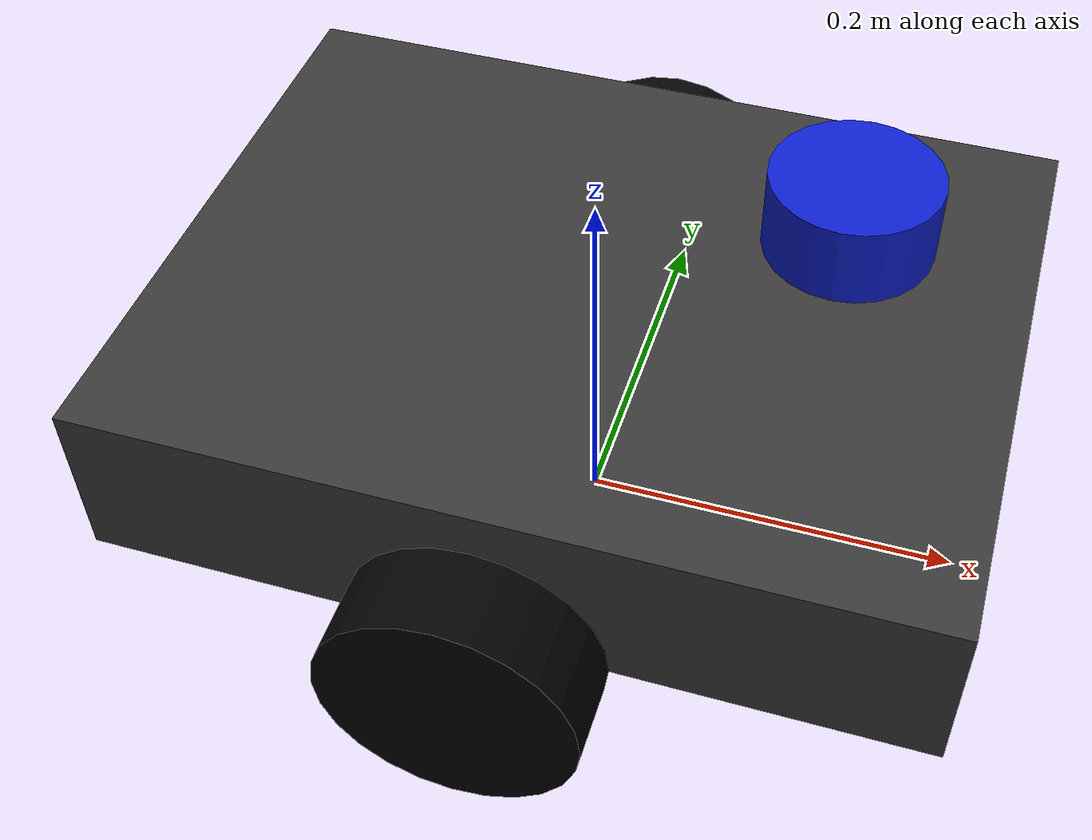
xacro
<?xml version="1.0"?>
<robot xmlns:xacro="http://www.ros.org/wiki/xacro" name="m10p_test_robot">
  <xacro:arg name="use_sim_time" default="true"/>

  <xacro:property name="PI_CONST" value="3.141592653589793"/>

  <!-- chassis -->
  <xacro:property name="base_length" value="0.42"/>
  <xacro:property name="base_width" value="0.32"/>
  <xacro:property name="base_height" value="0.09"/>
  <!-- base_link is on ground, so the chassis visual center is above ground. -->
  <xacro:property name="base_center_z" value="0.110"/>

  <!-- wheels -->
  <xacro:property name="wheel_radius" value="0.065"/>
  <xacro:property name="wheel_width" value="0.045"/>
  <!-- Keep wheels close to the chassis side: base_width/2 + wheel_width/2 ~= 0.1825 -->
  <xacro:property name="wheel_separation" value="0.365"/>
  <!-- Move the wheel axle slightly forward so the chassis center is not hanging in front of it. -->
  <xacro:property name="wheel_x" value="-0.010"/>
  <xacro:property name="wheel_z" value="${wheel_radius}"/>

  <!-- low-friction support balls -->
  <xacro:property name="support_radius" value="0.018"/>
  <!-- Front/rear support points are trimmed to avoid a nose-down stance under load. -->
  <xacro:property name="front_support_x" value="0.180"/>
  <xacro:property name="rear_support_x" value="-0.170"/>
  <xacro:property name="front_support_z" value="${support_radius + 0.0015}"/>
  <xacro:property name="rear_support_z" value="${support_radius - 0.0015}"/>

  <!-- lidar -->
  <xacro:property name="lidar_x" value="0.120"/>
  <xacro:property name="lidar_z" value="0.230"/>

  <material name="base_gray"><color rgba="0.22 0.22 0.22 1.0"/></material>
  <material name="wheel_black"><color rgba="0.01 0.01 0.01 1.0"/></material>
  <material name="lidar_blue"><color rgba="0.05 0.12 0.80 1.0"/></material>
  <material name="support_black"><color rgba="0.01 0.01 0.01 1.0"/></material>

  <!-- ===================== links ===================== -->

  <link name="base_link">
    <visual>
      <origin xyz="0 0 ${base_center_z}" rpy="0 0 0"/>
      <geometry>
        <box size="${base_length} ${base_width} ${base_height}"/>
      </geometry>
      <material name="base_gray"/>
    </visual>
    <collision>
      <origin xyz="0 0 ${base_center_z}" rpy="0 0 0"/>
      <geometry>
        <box size="${base_length} ${base_width} ${base_height}"/>
      </geometry>
    </collision>
    <inertial>
      <origin xyz="0 0 ${base_center_z}" rpy="0 0 0"/>
      <mass value="6.0"/>
      <inertia ixx="0.060" ixy="0" ixz="0" iyy="0.080" iyz="0" izz="0.120"/>
    </inertial>
  </link>

  <link name="left_wheel_link">
    <visual>
      <!-- Cylinder's native axis is Z; rotate it to the Y axis for a side wheel. -->
      <origin xyz="0 0 0" rpy="${PI_CONST/2.0} 0 0"/>
      <geometry>
        <cylinder radius="${wheel_radius}" length="${wheel_width}"/>
      </geometry>
      <material name="wheel_black"/>
    </visual>
    <collision>
      <origin xyz="0 0 0" rpy="${PI_CONST/2.0} 0 0"/>
      <geometry>
        <cylinder radius="${wheel_radius}" length="${wheel_width}"/>
      </geometry>
    </collision>
    <inertial>
      <mass value="0.45"/>
      <inertia ixx="0.0010" ixy="0" ixz="0" iyy="0.0010" iyz="0" izz="0.0010"/>
    </inertial>
  </link>

  <link name="right_wheel_link">
    <visual>
      <origin xyz="0 0 0" rpy="${PI_CONST/2.0} 0 0"/>
      <geometry>
        <cylinder radius="${wheel_radius}" length="${wheel_width}"/>
      </geometry>
      <material name="wheel_black"/>
    </visual>
    <collision>
      <origin xyz="0 0 0" rpy="${PI_CONST/2.0} 0 0"/>
      <geometry>
        <cylinder radius="${wheel_radius}" length="${wheel_width}"/>
      </geometry>
    </collision>
    <inertial>
      <mass value="0.45"/>
      <inertia ixx="0.0010" ixy="0" ixz="0" iyy="0.0010" iyz="0" izz="0.0010"/>
    </inertial>
  </link>

  <link name="front_support_link">
    <visual>
      <geometry>
        <sphere radius="${support_radius}"/>
      </geometry>
      <material name="support_black"/>
    </visual>
    <collision>
      <geometry>
        <sphere radius="${support_radius}"/>
      </geometry>
    </collision>
    <inertial>
      <mass value="0.03"/>
      <inertia ixx="0.000002" ixy="0" ixz="0" iyy="0.000002" iyz="0" izz="0.000002"/>
    </inertial>
  </link>

  <link name="rear_support_link">
    <visual>
      <geometry>
        <sphere radius="${support_radius}"/>
      </geometry>
      <material name="support_black"/>
    </visual>
    <collision>
      <geometry>
        <sphere radius="${support_radius}"/>
      </geometry>
    </collision>
    <inertial>
      <mass value="0.03"/>
      <inertia ixx="0.000002" ixy="0" ixz="0" iyy="0.000002" iyz="0" izz="0.000002"/>
    </inertial>
  </link>

  <link name="m10p_laser_link">
    <visual>
      <origin xyz="0 0 0" rpy="0 0 0"/>
      <geometry>
        <cylinder radius="0.03965" length="0.039"/>
      </geometry>
      <material name="lidar_blue"/>
    </visual>
    <collision>
      <origin xyz="0 0 0" rpy="0 0 0"/>
      <geometry>
        <cylinder radius="0.03965" length="0.039"/>
      </geometry>
    </collision>
    <inertial>
      <mass value="0.20"/>
      <inertia ixx="0.00015" ixy="0" ixz="0" iyy="0.00015" iyz="0" izz="0.00020"/>
    </inertial>
  </link>

  <!-- ===================== joints ===================== -->

  <joint name="left_wheel_joint" type="continuous">
    <parent link="base_link"/>
    <child link="left_wheel_link"/>
    <origin xyz="${wheel_x} ${wheel_separation/2.0} ${wheel_z}" rpy="0 0 0"/>
    <axis xyz="0 1 0"/>
  </joint>

  <joint name="right_wheel_joint" type="continuous">
    <parent link="base_link"/>
    <child link="right_wheel_link"/>
    <origin xyz="${wheel_x} ${-wheel_separation/2.0} ${wheel_z}" rpy="0 0 0"/>
    <axis xyz="0 1 0"/>
  </joint>

  <joint name="front_support_joint" type="fixed">
    <parent link="base_link"/>
    <child link="front_support_link"/>
    <origin xyz="${front_support_x} 0 ${front_support_z}" rpy="0 0 0"/>
  </joint>

  <joint name="rear_support_joint" type="fixed">
    <parent link="base_link"/>
    <child link="rear_support_link"/>
    <origin xyz="${rear_support_x} 0 ${rear_support_z}" rpy="0 0 0"/>
  </joint>

  <joint name="m10p_laser_joint" type="fixed">
    <parent link="base_link"/>
    <child link="m10p_laser_link"/>
    <origin xyz="${lidar_x} 0 ${lidar_z}" rpy="0 0 0"/>
  </joint>

  <!-- ===================== Gazebo visuals and contacts ===================== -->

  <gazebo reference="base_link">
    <material>Gazebo/DarkGrey</material>
  </gazebo>

  <gazebo reference="left_wheel_link">
    <material>Gazebo/Black</material>
    <mu1>1.4</mu1>
    <mu2>1.4</mu2>
    <kp>100000.0</kp>
    <kd>1.0</kd>
  </gazebo>

  <gazebo reference="right_wheel_link">
    <material>Gazebo/Black</material>
    <mu1>1.4</mu1>
    <mu2>1.4</mu2>
    <kp>100000.0</kp>
    <kd>1.0</kd>
  </gazebo>

  <gazebo reference="front_support_link">
    <material>Gazebo/Black</material>
    <mu1>0.01</mu1>
    <mu2>0.01</mu2>
    <kp>100000.0</kp>
    <kd>1.0</kd>
  </gazebo>

  <gazebo reference="rear_support_link">
    <material>Gazebo/Black</material>
    <mu1>0.01</mu1>
    <mu2>0.01</mu2>
    <kp>100000.0</kp>
    <kd>1.0</kd>
  </gazebo>

  <gazebo reference="m10p_laser_link">
    <material>Gazebo/Blue</material>
  </gazebo>

  <!-- ===================== Gazebo plugins ===================== -->

  <gazebo>
    <plugin name="diff_drive" filename="libgazebo_ros_diff_drive.so">
      <ros>
        <namespace>/</namespace>
        <remapping>cmd_vel:=cmd_vel</remapping>
        <remapping>odom:=odom_truth</remapping>
      </ros>

      <update_rate>50</update_rate>
      <left_joint>left_wheel_joint</left_joint>
      <right_joint>right_wheel_joint</right_joint>

      <wheel_separation>${wheel_separation}</wheel_separation>
      <wheel_diameter>${2.0 * wheel_radius}</wheel_diameter>

      <max_wheel_torque>30</max_wheel_torque>
      <max_wheel_acceleration>3.0</max_wheel_acceleration>

      <publish_odom>true</publish_odom>
      <publish_odom_tf>false</publish_odom_tf>
      <publish_wheel_tf>false</publish_wheel_tf>
      <publish_wheel_joint_state>false</publish_wheel_joint_state>
      <odometry_frame>odom_truth</odometry_frame>
      <robot_base_frame>base_link</robot_base_frame>
    </plugin>

    <!-- Same style as the reference URDF: Gazebo publishes the wheel joint states. -->
    <plugin name="wheel_joint_state" filename="libgazebo_ros_joint_state_publisher.so">
      <ros>
        <remapping>~/out:=joint_states</remapping>
      </ros>
      <update_rate>50</update_rate>
      <joint_name>left_wheel_joint</joint_name>
      <joint_name>right_wheel_joint</joint_name>
    </plugin>
  </gazebo>

  <gazebo reference="m10p_laser_link">
    <sensor name="m10p_laser" type="ray">
      <always_on>true</always_on>
      <visualize>true</visualize>
      <update_rate>10</update_rate>
      <pose>0 0 0 0 0 0</pose>
      <ray>
        <scan>
          <horizontal>
            <!-- 120-degree forward FOV: -60 deg to +60 deg. -->
            <samples>241</samples>
            <resolution>1</resolution>
            <min_angle>-${PI_CONST/3.0}</min_angle>
            <max_angle>${PI_CONST/3.0}</max_angle>
          </horizontal>
        </scan>
        <range>
          <min>0.18</min>
          <max>12.0</max>
          <resolution>0.01</resolution>
        </range>
        <noise>
          <type>gaussian</type>
          <mean>0.0</mean>
          <stddev>0.005</stddev>
        </noise>
      </ray>
      <plugin name="laser_scan" filename="libgazebo_ros_ray_sensor.so">
        <ros>
          <remapping>~/out:=scan</remapping>
        </ros>
        <output_type>sensor_msgs/LaserScan</output_type>
        <frame_name>m10p_laser_link</frame_name>
      </plugin>
    </sensor>
  </gazebo>
</robot>
